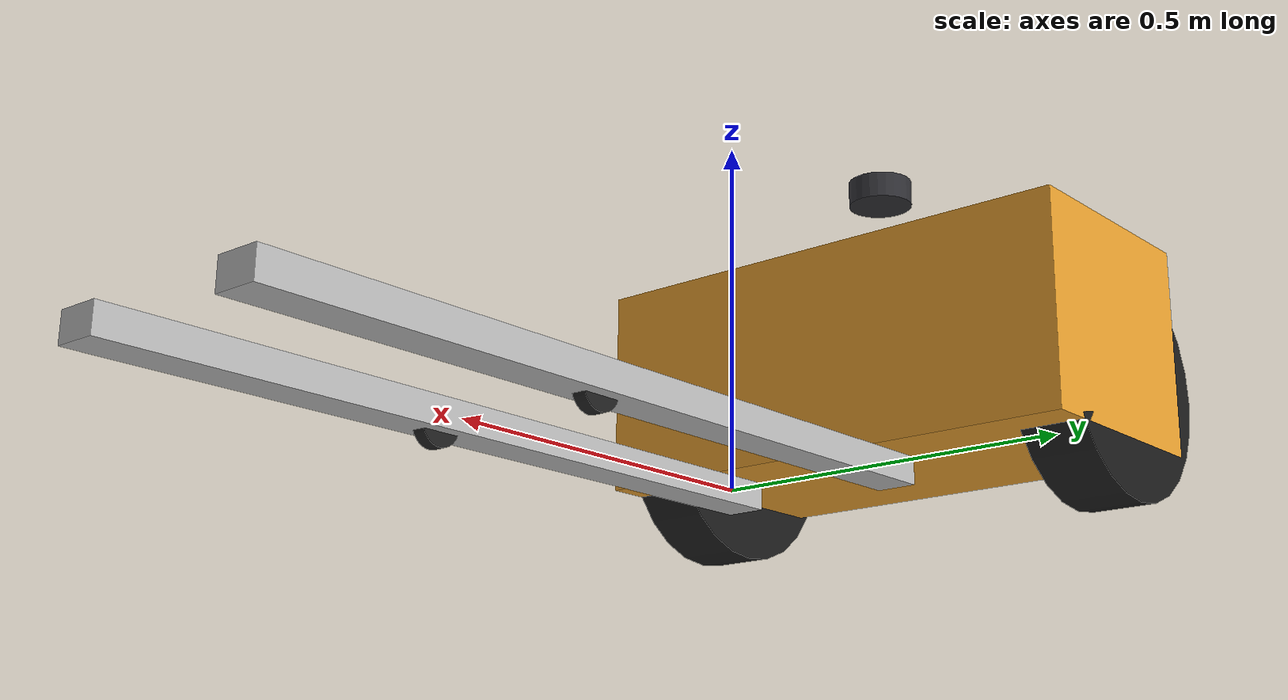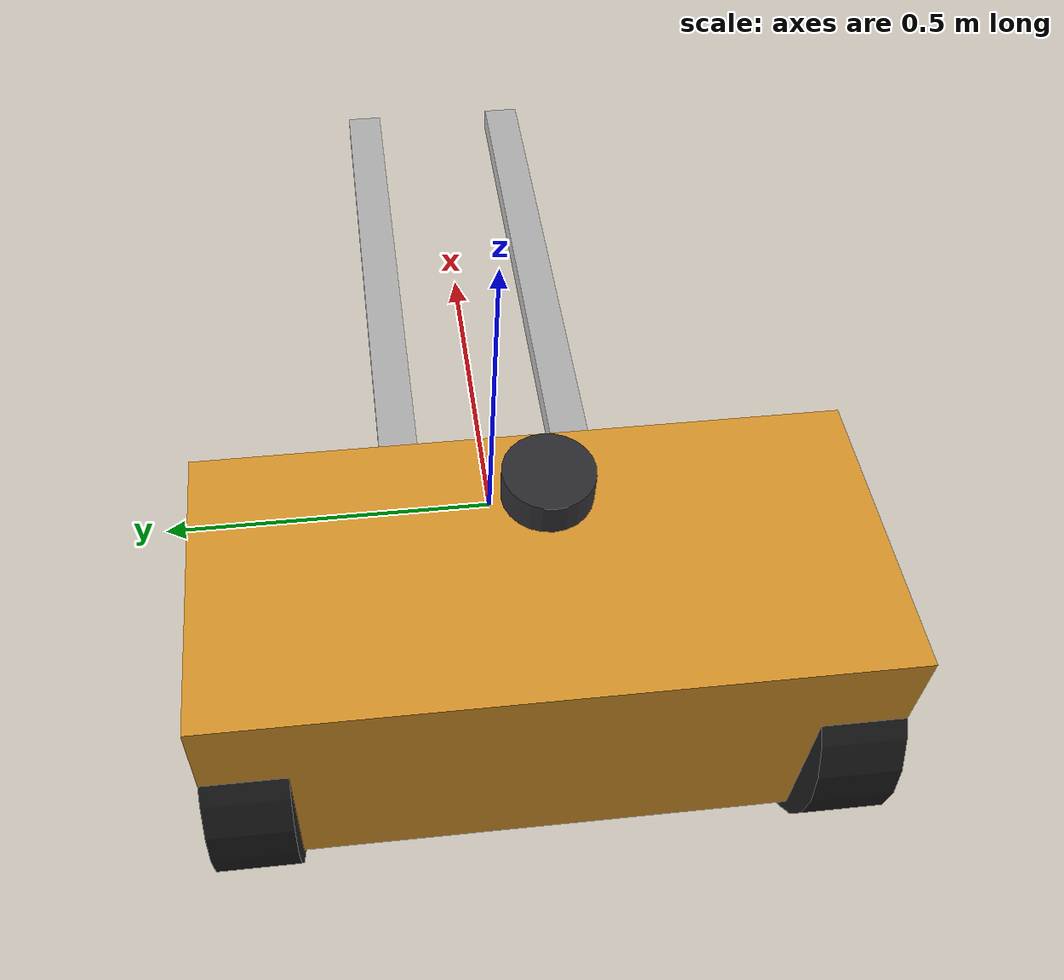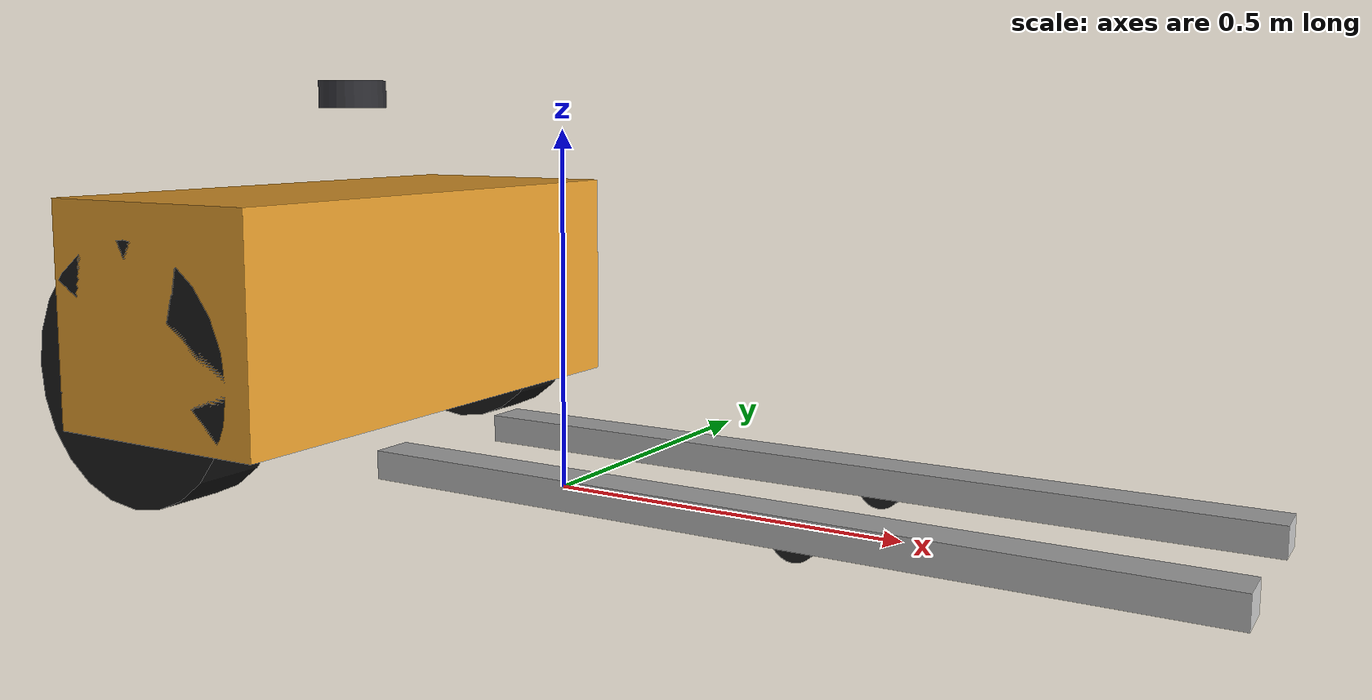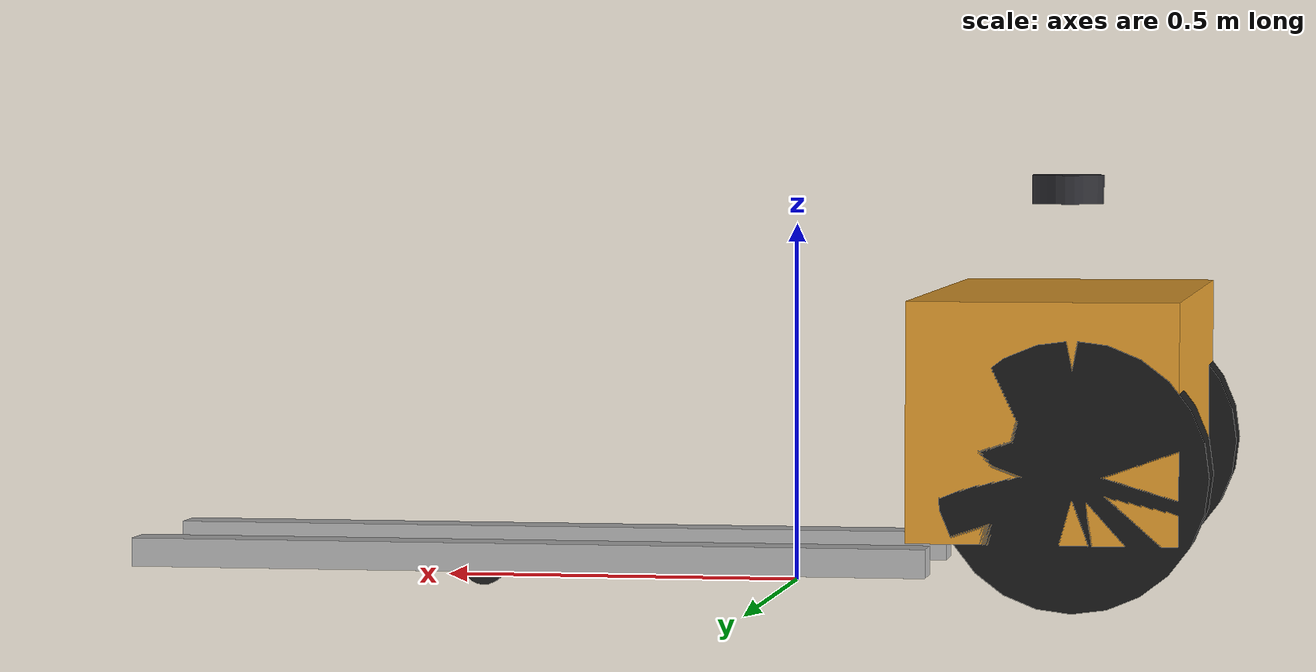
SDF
<?xml version="1.0"?>
<sdf version="1.9">
  <model name="forklift_demo">
    <pose>0 0 0 0 0 0</pose>
    <self_collide>false</self_collide>
    <static>false</static>

    <link name="base_link">
      <pose>0 0 0.25 0 0 0</pose>
      <inertial>
        <mass>80.0</mass>
        <inertia>
          <ixx>8.0</ixx>
          <iyy>12.0</iyy>
          <izz>15.0</izz>
          <ixy>0.0</ixy>
          <ixz>0.0</ixz>
          <iyz>0.0</iyz>
        </inertia>
      </inertial>
      <collision name="base_collision">
        <pose>-0.38 0 0 0 0 0</pose>
        <geometry>
          <box>
            <size>0.36 0.8 0.32</size>
          </box>
        </geometry>
      </collision>
      <visual name="base_visual">
        <pose>-0.38 0 0 0 0 0</pose>
        <geometry>
          <box>
            <size>0.36 0.8 0.32</size>
          </box>
        </geometry>
        <material>
          <ambient>0.90 0.62 0.18 1.0</ambient>
          <diffuse>0.90 0.62 0.18 1.0</diffuse>
        </material>
      </visual>
    </link>

    <link name="tracking_link">
      <pose>0.42 0 0.25 0 0 0</pose>
      <inertial>
        <mass>0.001</mass>
        <inertia>
          <ixx>1e-06</ixx>
          <iyy>1e-06</iyy>
          <izz>1e-06</izz>
          <ixy>0.0</ixy>
          <ixz>0.0</ixz>
          <iyz>0.0</iyz>
        </inertia>
      </inertial>
    </link>

    <joint name="tracking_joint" type="fixed">
      <parent>base_link</parent>
      <child>tracking_link</child>
    </joint>

    <link name="fork_carriage_link">
      <pose>0 0 0.25 0 0 0</pose>
      <inertial>
        <mass>6.0</mass>
        <inertia>
          <ixx>0.30</ixx>
          <iyy>0.90</iyy>
          <izz>1.10</izz>
          <ixy>0.0</ixy>
          <ixz>0.0</ixz>
          <iyz>0.0</iyz>
        </inertia>
      </inertial>
      <visual name="left_fork_visual">
        <pose>0.36 0.135 -0.21 0 0 0</pose>
        <geometry>
          <box>
            <size>1.12 0.06 0.04</size>
          </box>
        </geometry>
        <material>
          <ambient>0.72 0.72 0.72 1.0</ambient>
          <diffuse>0.72 0.72 0.72 1.0</diffuse>
        </material>
      </visual>
      <collision name="left_fork_collision">
        <pose>0.36 0.135 -0.21 0 0 0</pose>
        <geometry>
          <box>
            <size>1.12 0.06 0.04</size>
          </box>
        </geometry>
      </collision>
      <visual name="right_fork_visual">
        <pose>0.36 -0.135 -0.21 0 0 0</pose>
        <geometry>
          <box>
            <size>1.12 0.06 0.04</size>
          </box>
        </geometry>
        <material>
          <ambient>0.72 0.72 0.72 1.0</ambient>
          <diffuse>0.72 0.72 0.72 1.0</diffuse>
        </material>
      </visual>
      <collision name="right_fork_collision">
        <pose>0.36 -0.135 -0.21 0 0 0</pose>
        <geometry>
          <box>
            <size>1.12 0.06 0.04</size>
          </box>
        </geometry>
      </collision>
    </link>

    <link name="front_left_wheel_link">
      <pose>0.42 0.135 0.03 0 0 0</pose>
      <inertial>
        <mass>0.05</mass>
        <inertia>
          <ixx>0.0002</ixx>
          <iyy>0.0001</iyy>
          <izz>0.0002</izz>
          <ixy>0.0</ixy>
          <ixz>0.0</ixz>
          <iyz>0.0</iyz>
        </inertia>
      </inertial>
      <collision name="front_left_wheel_collision">
        <pose>0 0 0 1.57079632679 0 0</pose>
        <geometry>
          <cylinder>
            <radius>0.03</radius>
            <length>0.02</length>
          </cylinder>
        </geometry>
        <surface>
          <friction>
            <ode>
              <mu>8.0</mu>
              <mu2>8.0</mu2>
              <slip1>0.0</slip1>
              <slip2>0.0</slip2>
            </ode>
            <bullet>
              <friction>8.0</friction>
              <friction2>8.0</friction2>
            </bullet>
          </friction>
        </surface>
      </collision>
      <visual name="front_left_wheel_visual">
        <pose>0 0 0 1.57079632679 0 0</pose>
        <geometry>
          <cylinder>
            <radius>0.03</radius>
            <length>0.02</length>
          </cylinder>
        </geometry>
        <material>
          <ambient>0.12 0.12 0.12 1.0</ambient>
          <diffuse>0.12 0.12 0.12 1.0</diffuse>
        </material>
      </visual>
    </link>

    <link name="front_right_wheel_link">
      <pose>0.42 -0.135 0.03 0 0 0</pose>
      <inertial>
        <mass>0.05</mass>
        <inertia>
          <ixx>0.0002</ixx>
          <iyy>0.0001</iyy>
          <izz>0.0002</izz>
          <ixy>0.0</ixy>
          <ixz>0.0</ixz>
          <iyz>0.0</iyz>
        </inertia>
      </inertial>
      <collision name="front_right_wheel_collision">
        <pose>0 0 0 1.57079632679 0 0</pose>
        <geometry>
          <cylinder>
            <radius>0.03</radius>
            <length>0.02</length>
          </cylinder>
        </geometry>
        <surface>
          <friction>
            <ode>
              <mu>8.0</mu>
              <mu2>8.0</mu2>
              <slip1>0.0</slip1>
              <slip2>0.0</slip2>
            </ode>
            <bullet>
              <friction>8.0</friction>
              <friction2>8.0</friction2>
            </bullet>
          </friction>
        </surface>
      </collision>
      <visual name="front_right_wheel_visual">
        <pose>0 0 0 1.57079632679 0 0</pose>
        <geometry>
          <cylinder>
            <radius>0.03</radius>
            <length>0.02</length>
          </cylinder>
        </geometry>
        <material>
          <ambient>0.12 0.12 0.12 1.0</ambient>
          <diffuse>0.12 0.12 0.12 1.0</diffuse>
        </material>
      </visual>
    </link>

    <joint name="front_left_wheel_joint" type="revolute">
      <parent>base_link</parent>
      <child>front_left_wheel_link</child>
      <axis>
        <xyz>0 1 0</xyz>
        <limit>
          <effort>40</effort>
          <velocity>20.0</velocity>
        </limit>
      </axis>
    </joint>

    <joint name="front_right_wheel_joint" type="revolute">
      <parent>base_link</parent>
      <child>front_right_wheel_link</child>
      <axis>
        <xyz>0 1 0</xyz>
        <limit>
          <effort>40</effort>
          <velocity>20.0</velocity>
        </limit>
      </axis>
    </joint>

    <joint name="fork_lift_joint" type="prismatic">
      <parent>base_link</parent>
      <child>fork_carriage_link</child>
      <axis>
        <xyz>0 0 1</xyz>
        <limit>
          <lower>0.0</lower>
          <upper>0.28</upper>
          <effort>5000</effort>
          <velocity>0.4</velocity>
        </limit>
        <dynamics>
          <damping>5.0</damping>
        </dynamics>
      </axis>
    </joint>

    <link name="rear_steer_link">
      <pose>-0.42 0.35 0.18 0 0 0</pose>
      <inertial>
        <mass>0.5</mass>
        <inertia>
          <ixx>0.01</ixx>
          <iyy>0.01</iyy>
          <izz>0.01</izz>
          <ixy>0.0</ixy>
          <ixz>0.0</ixz>
          <iyz>0.0</iyz>
        </inertia>
      </inertial>
    </link>

    <joint name="rear_steering_joint" type="revolute">
      <parent>base_link</parent>
      <child>rear_steer_link</child>
      <axis>
        <xyz>0 0 1</xyz>
        <limit>
          <lower>-1.57079632679</lower>
          <upper>1.57079632679</upper>
          <effort>120</effort>
          <velocity>2.0</velocity>
        </limit>
      </axis>
    </joint>

    <link name="rear_drive_wheel_link">
      <pose>-0.42 0.35 0.18 0 0 0</pose>
      <inertial>
        <mass>2.0</mass>
        <inertia>
          <ixx>0.05</ixx>
          <iyy>0.02</iyy>
          <izz>0.05</izz>
          <ixy>0.0</ixy>
          <ixz>0.0</ixz>
          <iyz>0.0</iyz>
        </inertia>
      </inertial>
      <collision name="rear_drive_wheel_collision">
        <pose>0 0 0 1.57079632679 0 0</pose>
        <geometry>
          <cylinder>
            <radius>0.18</radius>
            <length>0.1</length>
          </cylinder>
        </geometry>
        <surface>
          <friction>
            <ode>
              <mu>5.5</mu>
              <mu2>5.5</mu2>
              <slip1>0.001</slip1>
              <slip2>0.001</slip2>
            </ode>
            <bullet>
              <friction>5.5</friction>
              <friction2>5.5</friction2>
            </bullet>
          </friction>
        </surface>
      </collision>
      <visual name="rear_drive_wheel_visual">
        <pose>0 0 0 1.57079632679 0 0</pose>
        <geometry>
          <cylinder>
            <radius>0.18</radius>
            <length>0.1</length>
          </cylinder>
        </geometry>
        <material>
          <ambient>0.10 0.10 0.10 1.0</ambient>
          <diffuse>0.10 0.10 0.10 1.0</diffuse>
        </material>
      </visual>
    </link>

    <joint name="rear_wheel_joint" type="revolute">
      <parent>rear_steer_link</parent>
      <child>rear_drive_wheel_link</child>
      <axis>
        <xyz>0 1 0</xyz>
        <dynamics>
          <damping>3.0</damping>
          <friction>35.0</friction>
        </dynamics>
        <limit>
          <effort>800</effort>
          <velocity>12.0</velocity>
        </limit>
      </axis>
    </joint>

    <link name="rear_right_caster_link">
      <pose>-0.34 -0.35 0.18 0 0 0</pose>
      <inertial>
        <mass>0.5</mass>
        <inertia>
          <ixx>0.01</ixx>
          <iyy>0.01</iyy>
          <izz>0.01</izz>
          <ixy>0.0</ixy>
          <ixz>0.0</ixz>
          <iyz>0.0</iyz>
        </inertia>
      </inertial>
    </link>

    <joint name="rear_right_steering_joint" type="revolute">
      <parent>base_link</parent>
      <child>rear_right_caster_link</child>
      <axis>
        <xyz>0 0 1</xyz>
        <dynamics>
          <damping>0.05</damping>
        </dynamics>
        <limit>
          <effort>15</effort>
          <velocity>6.0</velocity>
        </limit>
      </axis>
    </joint>

    <link name="rear_right_wheel_link">
      <pose>-0.42 -0.35 0.18 0 0 0</pose>
      <inertial>
        <mass>2.0</mass>
        <inertia>
          <ixx>0.05</ixx>
          <iyy>0.02</iyy>
          <izz>0.05</izz>
          <ixy>0.0</ixy>
          <ixz>0.0</ixz>
          <iyz>0.0</iyz>
        </inertia>
      </inertial>
      <collision name="rear_right_wheel_collision">
        <pose>0 0 0 1.57079632679 0 0</pose>
        <geometry>
          <cylinder>
            <radius>0.18</radius>
            <length>0.1</length>
          </cylinder>
        </geometry>
        <surface>
          <friction>
            <ode>
              <mu>2.5</mu>
              <mu2>2.5</mu2>
              <slip1>0.02</slip1>
              <slip2>0.02</slip2>
            </ode>
            <bullet>
              <friction>2.5</friction>
              <friction2>2.5</friction2>
            </bullet>
          </friction>
        </surface>
      </collision>
      <visual name="rear_right_wheel_visual">
        <pose>0 0 0 1.57079632679 0 0</pose>
        <geometry>
          <cylinder>
            <radius>0.18</radius>
            <length>0.1</length>
          </cylinder>
        </geometry>
        <material>
          <ambient>0.10 0.10 0.10 1.0</ambient>
          <diffuse>0.10 0.10 0.10 1.0</diffuse>
        </material>
      </visual>
    </link>

    <joint name="rear_right_wheel_joint" type="revolute">
      <parent>rear_right_caster_link</parent>
      <child>rear_right_wheel_link</child>
      <axis>
        <xyz>0 1 0</xyz>
        <dynamics>
          <damping>0.02</damping>
        </dynamics>
        <limit>
          <effort>25</effort>
          <velocity>20.0</velocity>
        </limit>
      </axis>
    </joint>

    <link name="laser_link">
      <pose>-0.38 0.0 0.55 0 0 0</pose>
      <inertial>
        <mass>0.2</mass>
        <inertia>
          <ixx>0.001</ixx>
          <iyy>0.001</iyy>
          <izz>0.001</izz>
          <ixy>0.0</ixy>
          <ixz>0.0</ixz>
          <iyz>0.0</iyz>
        </inertia>
      </inertial>
      <visual name="laser_visual">
        <geometry>
          <cylinder>
            <radius>0.05</radius>
            <length>0.04</length>
          </cylinder>
        </geometry>
        <material>
          <ambient>0.18 0.18 0.20 1.0</ambient>
          <diffuse>0.18 0.18 0.20 1.0</diffuse>
        </material>
      </visual>
      <sensor name="lidar" type="gpu_lidar">
        <topic>/scan</topic>
        <update_rate>12</update_rate>
        <always_on>true</always_on>
        <visualize>false</visualize>
        <gz_frame_id>laser_link</gz_frame_id>
        <lidar>
          <scan>
            <horizontal>
              <samples>720</samples>
              <resolution>1</resolution>
              <min_angle>-3.14159265359</min_angle>
              <max_angle>3.14159265359</max_angle>
            </horizontal>
          </scan>
          <range>
            <min>0.05</min>
            <max>10.0</max>
            <resolution>0.01</resolution>
          </range>
        </lidar>
      </sensor>
    </link>

    <joint name="laser_joint" type="fixed">
      <parent>base_link</parent>
      <child>laser_link</child>
    </joint>

    <plugin
      filename="gz-sim-odometry-publisher-system"
      name="ignition::gazebo::systems::OdometryPublisher">
      <odom_topic>/odom_gz</odom_topic>
      <tf_topic>/tf_gz</tf_topic>
      <odom_frame>odom</odom_frame>
      <robot_base_frame>base_link</robot_base_frame>
      <odom_publish_frequency>30</odom_publish_frequency>
      <dimensions>2</dimensions>
    </plugin>

    <plugin
      filename="gz-sim-joint-state-publisher-system"
      name="gz::sim::systems::JointStatePublisher">
      <joint_name>fork_lift_joint</joint_name>
      <topic>/joint_states_gz</topic>
      <joint_name>front_left_wheel_joint</joint_name>
      <joint_name>front_right_wheel_joint</joint_name>
      <joint_name>rear_steering_joint</joint_name>
      <joint_name>rear_wheel_joint</joint_name>
      <joint_name>rear_right_steering_joint</joint_name>
      <joint_name>rear_right_wheel_joint</joint_name>
    </plugin>

    <plugin
      filename="gz-sim-joint-position-controller-system"
      name="gz::sim::systems::JointPositionController">
      <joint_name>rear_steering_joint</joint_name>
      <topic>/forklift/rear_steering_cmd</topic>
      <p_gain>80</p_gain>
      <i_gain>0.5</i_gain>
      <d_gain>12</d_gain>
      <i_max>5</i_max>
      <i_min>-5</i_min>
      <cmd_max>120</cmd_max>
      <cmd_min>-120</cmd_min>
    </plugin>

    <plugin
      filename="gz-sim-joint-controller-system"
      name="gz::sim::systems::JointController">
      <joint_name>rear_wheel_joint</joint_name>
      <topic>/forklift/rear_wheel_cmd</topic>
    </plugin>
  </model>
</sdf>
